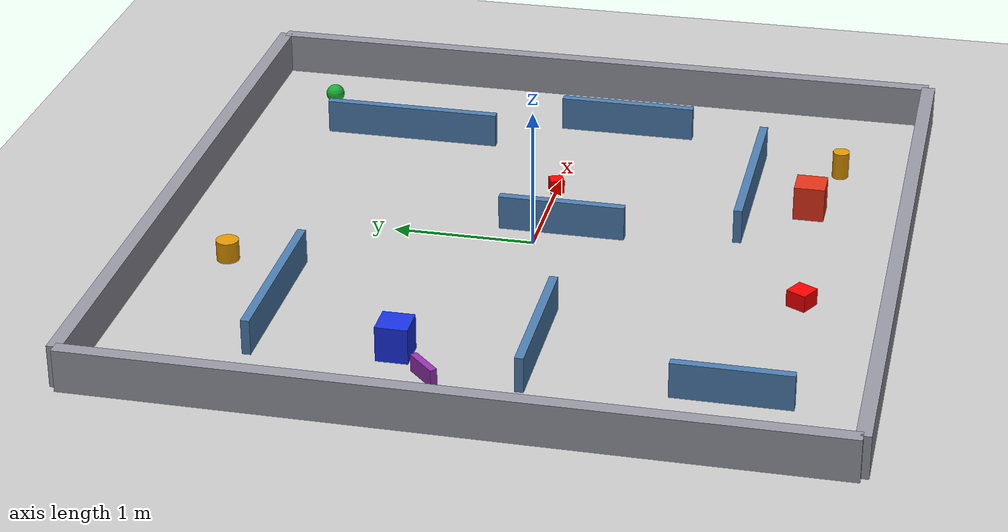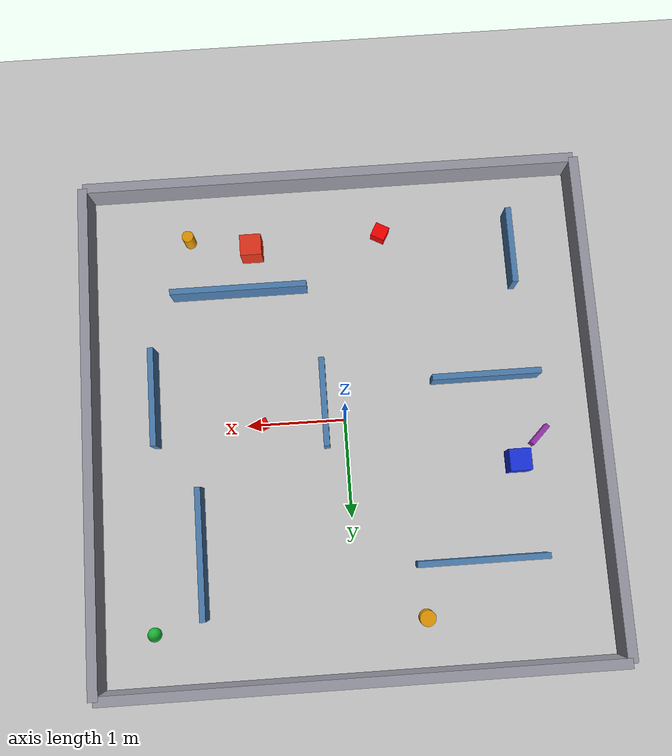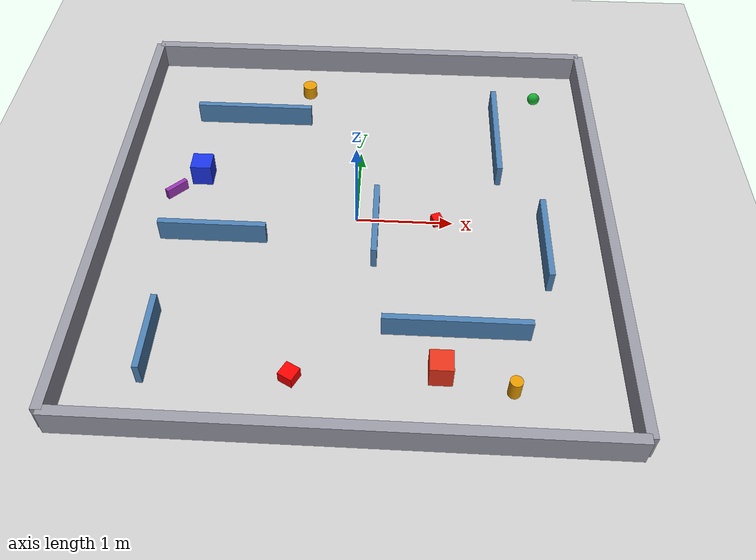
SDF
<?xml version='1.0' encoding='utf-8'?>
<sdf version="1.9">
  <world name="ms616_default">
    <plugin filename="ignition-gazebo-physics-system" name="ignition::gazebo::systems::Physics">
</plugin>
    <plugin filename="ignition-gazebo-user-commands-system" name="ignition::gazebo::systems::UserCommands">
</plugin>
    <plugin filename="ignition-gazebo-scene-broadcaster-system" name="ignition::gazebo::systems::SceneBroadcaster">
</plugin>
    <plugin filename="ignition-gazebo-imu-system" name="ignition::gazebo::systems::Imu">
</plugin>
    <plugin filename="ignition-gazebo-sensors-system" name="ignition::gazebo::systems::Sensors">
      <render_engine>ogre2</render_engine>
    </plugin>
    <light type="directional" name="sun">
      <cast_shadows>true</cast_shadows>
      <pose>0 0 10 0 0 0</pose>
      <diffuse>0.8 0.8 0.8 1</diffuse>
      <specular>0.2 0.2 0.2 1</specular>
      <attenuation>
        <range>1000</range>
        <constant>0.9</constant>
        <linear>0.01</linear>
        <quadratic>0.001</quadratic>
      </attenuation>
      <direction>-0.5 0.1 -0.9</direction>
    </light>
    <model name="ground_plane">
      <static>true</static>
      <link name="link">
        <collision name="collision">
          <geometry>
            <plane>
              <normal>0 0 1</normal>
              <size>100 100</size>
            </plane>
          </geometry>
        </collision>
        <visual name="visual">
          <geometry>
            <plane>
              <normal>0 0 1</normal>
              <size>100 100</size>
            </plane>
          </geometry>
          <material>
            <ambient>0.8 0.8 0.8 1</ambient>
            <diffuse>0.8 0.8 0.8 1</diffuse>
            <specular>0.8 0.8 0.8 1</specular>
          </material>
        </visual>
      </link>
    </model>
    <model name="wall_north">
      <static>true</static>
      <pose>0 2.55 0.15 0 0 0</pose>
      <link name="link">
        <collision name="collision">
          <geometry>
            <box>
              <size>5.1 0.1 0.3</size>
            </box>
          </geometry>
        </collision>
        <visual name="visual">
          <geometry>
            <box>
              <size>5.1 0.1 0.3</size>
            </box>
          </geometry>
          <material>
            <ambient>0.6 0.6 0.65 1</ambient>
            <diffuse>0.6 0.6 0.65 1</diffuse>
          </material>
        </visual>
      </link>
    </model>
    <model name="wall_south">
      <static>true</static>
      <pose>0 -2.55 0.15 0 0 0</pose>
      <link name="link">
        <collision name="collision">
          <geometry>
            <box>
              <size>5.1 0.1 0.3</size>
            </box>
          </geometry>
        </collision>
        <visual name="visual">
          <geometry>
            <box>
              <size>5.1 0.1 0.3</size>
            </box>
          </geometry>
          <material>
            <ambient>0.6 0.6 0.65 1</ambient>
            <diffuse>0.6 0.6 0.65 1</diffuse>
          </material>
        </visual>
      </link>
    </model>
    <model name="wall_east">
      <static>true</static>
      <pose>2.55 0 0.15 0 0 0</pose>
      <link name="link">
        <collision name="collision">
          <geometry>
            <box>
              <size>0.1 5.1 0.3</size>
            </box>
          </geometry>
        </collision>
        <visual name="visual">
          <geometry>
            <box>
              <size>0.1 5.1 0.3</size>
            </box>
          </geometry>
          <material>
            <ambient>0.6 0.6 0.65 1</ambient>
            <diffuse>0.6 0.6 0.65 1</diffuse>
          </material>
        </visual>
      </link>
    </model>
    <model name="wall_west">
      <static>true</static>
      <pose>-2.55 0 0.15 0 0 0</pose>
      <link name="link">
        <collision name="collision">
          <geometry>
            <box>
              <size>0.1 5.1 0.3</size>
            </box>
          </geometry>
        </collision>
        <visual name="visual">
          <geometry>
            <box>
              <size>0.1 5.1 0.3</size>
            </box>
          </geometry>
          <material>
            <ambient>0.6 0.6 0.65 1</ambient>
            <diffuse>0.6 0.6 0.65 1</diffuse>
          </material>
        </visual>
      </link>
    </model>
    <model name="maze_wall_1">
      <static>true</static>
      <pose>-1.25 1.5 0.125 0 0 0</pose>
      <link name="link">
        <collision name="collision">
          <geometry>
            <box>
              <size>1.3 0.06 0.25</size>
            </box>
          </geometry>
        </collision>
        <visual name="visual">
          <geometry>
            <box>
              <size>1.3 0.06 0.25</size>
            </box>
          </geometry>
          <material>
            <ambient>0.3 0.5 0.7 1</ambient>
            <diffuse>0.3 0.5 0.7 1</diffuse>
          </material>
        </visual>
      </link>
    </model>
    <model name="maze_wall_2">
      <static>true</static>
      <pose>1.5 1.25 0.125 0 0 1.5708</pose>
      <link name="link">
        <collision name="collision">
          <geometry>
            <box>
              <size>1.3 0.06 0.25</size>
            </box>
          </geometry>
        </collision>
        <visual name="visual">
          <geometry>
            <box>
              <size>1.3 0.06 0.25</size>
            </box>
          </geometry>
          <material>
            <ambient>0.3 0.5 0.7 1</ambient>
            <diffuse>0.3 0.5 0.7 1</diffuse>
          </material>
        </visual>
      </link>
    </model>
    <model name="maze_wall_3">
      <static>true</static>
      <pose>-1.45 -0.333333 0.125 0 0 0</pose>
      <link name="link">
        <collision name="collision">
          <geometry>
            <box>
              <size>1.1 0.06 0.25</size>
            </box>
          </geometry>
        </collision>
        <visual name="visual">
          <geometry>
            <box>
              <size>1.1 0.06 0.25</size>
            </box>
          </geometry>
          <material>
            <ambient>0.3 0.5 0.7 1</ambient>
            <diffuse>0.3 0.5 0.7 1</diffuse>
          </material>
        </visual>
      </link>
    </model>
    <model name="maze_wall_4">
      <static>true</static>
      <pose>0.2 -0.166667 0.125 0 0 1.5708</pose>
      <link name="link">
        <collision name="collision">
          <geometry>
            <box>
              <size>0.9 0.06 0.25</size>
            </box>
          </geometry>
        </collision>
        <visual name="visual">
          <geometry>
            <box>
              <size>0.9 0.06 0.25</size>
            </box>
          </geometry>
          <material>
            <ambient>0.3 0.5 0.7 1</ambient>
            <diffuse>0.3 0.5 0.7 1</diffuse>
          </material>
        </visual>
      </link>
    </model>
    <model name="maze_wall_5">
      <static>true</static>
      <pose>1 -1.4 0.125 0 0 0</pose>
      <link name="link">
        <collision name="collision">
          <geometry>
            <box>
              <size>1.4 0.06 0.25</size>
            </box>
          </geometry>
        </collision>
        <visual name="visual">
          <geometry>
            <box>
              <size>1.4 0.06 0.25</size>
            </box>
          </geometry>
          <material>
            <ambient>0.3 0.5 0.7 1</ambient>
            <diffuse>0.3 0.5 0.7 1</diffuse>
          </material>
        </visual>
      </link>
    </model>
    <model name="maze_wall_6">
      <static>true</static>
      <pose>-1.83333 -1.66667 0.125 0 0 1.5708</pose>
      <link name="link">
        <collision name="collision">
          <geometry>
            <box>
              <size>0.8 0.06 0.25</size>
            </box>
          </geometry>
        </collision>
        <visual name="visual">
          <geometry>
            <box>
              <size>0.8 0.06 0.25</size>
            </box>
          </geometry>
          <material>
            <ambient>0.3 0.5 0.7 1</ambient>
            <diffuse>0.3 0.5 0.7 1</diffuse>
          </material>
        </visual>
      </link>
    </model>
    <model name="maze_wall_7">
      <static>true</static>
      <pose>1.91667 -0.333333 0.125 0 0 1.5708</pose>
      <link name="link">
        <collision name="collision">
          <geometry>
            <box>
              <size>1 0.06 0.25</size>
            </box>
          </geometry>
        </collision>
        <visual name="visual">
          <geometry>
            <box>
              <size>1 0.06 0.25</size>
            </box>
          </geometry>
          <material>
            <ambient>0.3 0.5 0.7 1</ambient>
            <diffuse>0.3 0.5 0.7 1</diffuse>
          </material>
        </visual>
      </link>
    </model>
    <model name="obstacle_box">
      <static>true</static>
      <pose>0.833333 0 0.05 0 0 0.4</pose>
      <link name="link">
        <collision name="collision">
          <geometry>
            <box>
              <size>0.1 0.1 0.1</size>
            </box>
          </geometry>
        </collision>
        <visual name="visual">
          <geometry>
            <box>
              <size>0.1 0.1 0.1</size>
            </box>
          </geometry>
          <material>
            <ambient>1 0 0 1</ambient>
            <diffuse>1 0 0 1</diffuse>
          </material>
        </visual>
      </link>
    </model>
    <model name="obstacle_cylinder">
      <static>true</static>
      <pose>-0.666667 2.02 0.075 0 0 0</pose>
      <link name="link">
        <collision name="collision">
          <geometry>
            <cylinder>
              <radius>0.08</radius>
              <length>0.15</length>
            </cylinder>
          </geometry>
        </collision>
        <visual name="visual">
          <geometry>
            <cylinder>
              <radius>0.08</radius>
              <length>0.15</length>
            </cylinder>
          </geometry>
          <material>
            <ambient>0.9 0.6 0 1</ambient>
            <diffuse>0.9 0.6 0 1</diffuse>
          </material>
        </visual>
      </link>
    </model>
    <model name="obstacle_sphere">
      <static>true</static>
      <pose>2 2 0.07 0 0 0</pose>
      <link name="link">
        <collision name="collision">
          <geometry>
            <sphere>
              <radius>0.07</radius>
            </sphere>
          </geometry>
        </collision>
        <visual name="visual">
          <geometry>
            <sphere>
              <radius>0.07</radius>
            </sphere>
          </geometry>
          <material>
            <ambient>0.1 0.7 0.2 1</ambient>
            <diffuse>0.1 0.7 0.2 1</diffuse>
          </material>
        </visual>
      </link>
    </model>
    <model name="obstacle_wedge">
      <static>true</static>
      <pose>-1.95 0.3 0.06 0 0 0.7854</pose>
      <link name="link">
        <collision name="collision">
          <geometry>
            <box>
              <size>0.25 0.05 0.12</size>
            </box>
          </geometry>
        </collision>
        <visual name="visual">
          <geometry>
            <box>
              <size>0.25 0.05 0.12</size>
            </box>
          </geometry>
          <material>
            <ambient>0.6 0.2 0.7 1</ambient>
            <diffuse>0.6 0.2 0.7 1</diffuse>
          </material>
        </visual>
      </link>
    </model>
    <model name="obstacle_cylinder_tall">
      <static>true</static>
      <pose>1.5 -2 0.1 0 0 0</pose>
      <link name="link">
        <collision name="collision">
          <geometry>
            <cylinder>
              <radius>0.06</radius>
              <length>0.2</length>
            </cylinder>
          </geometry>
        </collision>
        <visual name="visual">
          <geometry>
            <cylinder>
              <radius>0.06</radius>
              <length>0.2</length>
            </cylinder>
          </geometry>
          <material>
            <ambient>0.9 0.6 0 1</ambient>
            <diffuse>0.9 0.6 0 1</diffuse>
          </material>
        </visual>
      </link>
    </model>
    <model name="obstacle_box_2">
      <static>true</static>
      <pose>-0.5 -1.95 0.06 0 0 -0.5</pose>
      <link name="link">
        <collision name="collision">
          <geometry>
            <box>
              <size>0.15 0.15 0.12</size>
            </box>
          </geometry>
        </collision>
        <visual name="visual">
          <geometry>
            <box>
              <size>0.15 0.15 0.12</size>
            </box>
          </geometry>
          <material>
            <ambient>1 0 0 1</ambient>
            <diffuse>1 0 0 1</diffuse>
          </material>
        </visual>
      </link>
    </model>

    <model name="dynamic_crossing_box">
      <static>false</static>
      <allow_auto_disable>false</allow_auto_disable>
      <pose>-1.7 0.55 0.125 0 0 0</pose>
      <link name="link">
        <gravity>false</gravity>
        <inertial>
          <mass>1.0</mass>
          <inertia>
            <ixx>0.012</ixx><iyy>0.012</iyy><izz>0.012</izz>
            <ixy>0</ixy><ixz>0</ixz><iyz>0</iyz>
          </inertia>
        </inertial>
        <collision name="collision">
          <geometry>
            <box><size>0.22 0.22 0.25</size></box>
          </geometry>
        </collision>
        <visual name="visual">
          <geometry>
            <box><size>0.22 0.22 0.25</size></box>
          </geometry>
          <material>
            <ambient>0.1 0.2 0.9 1</ambient>
            <diffuse>0.1 0.2 0.9 1</diffuse>
          </material>
        </visual>
      </link>
    </model>

    <model name="dynamic_vertical_box">
      <static>false</static>
      <allow_auto_disable>false</allow_auto_disable>
      <pose>0.85 -1.85 0.125 0 0 1.5708</pose>
      <link name="link">
        <gravity>false</gravity>
        <inertial>
          <mass>1.0</mass>
          <inertia>
            <ixx>0.012</ixx><iyy>0.012</iyy><izz>0.012</izz>
            <ixy>0</ixy><ixz>0</ixz><iyz>0</iyz>
          </inertia>
        </inertial>
        <collision name="collision">
          <geometry>
            <box><size>0.22 0.22 0.25</size></box>
          </geometry>
        </collision>
        <visual name="visual">
          <geometry>
            <box><size>0.22 0.22 0.25</size></box>
          </geometry>
          <material>
            <ambient>0.9 0.2 0.1 1</ambient>
            <diffuse>0.9 0.2 0.1 1</diffuse>
          </material>
        </visual>
      </link>
    </model>

</world>
</sdf>
